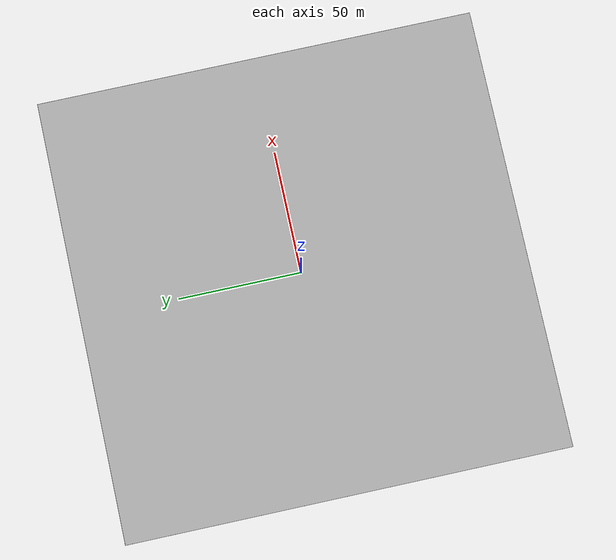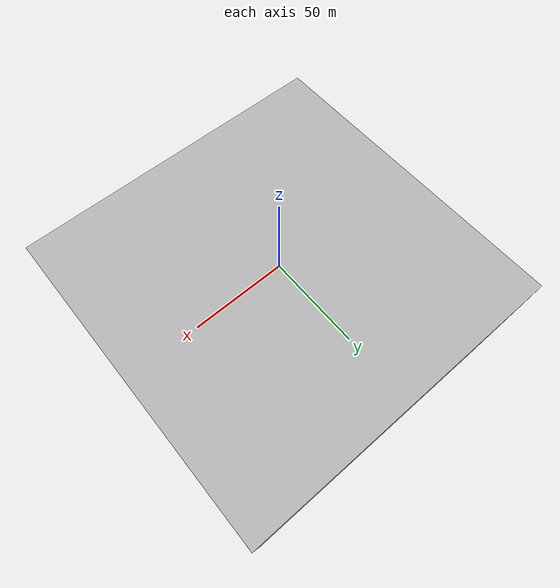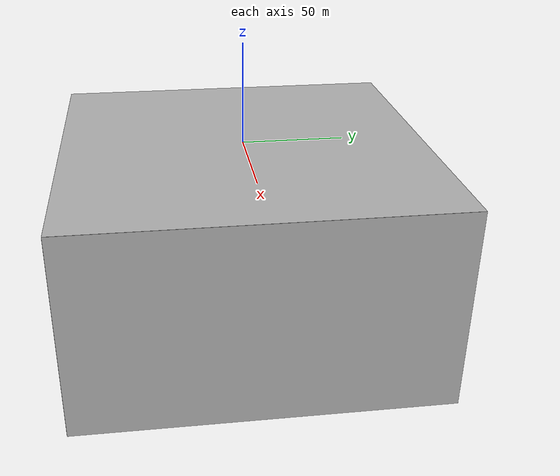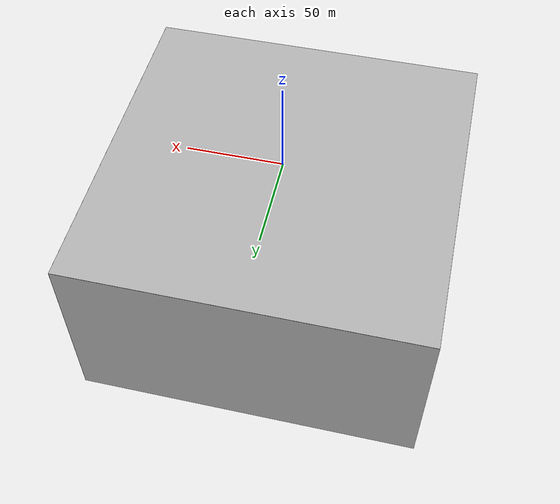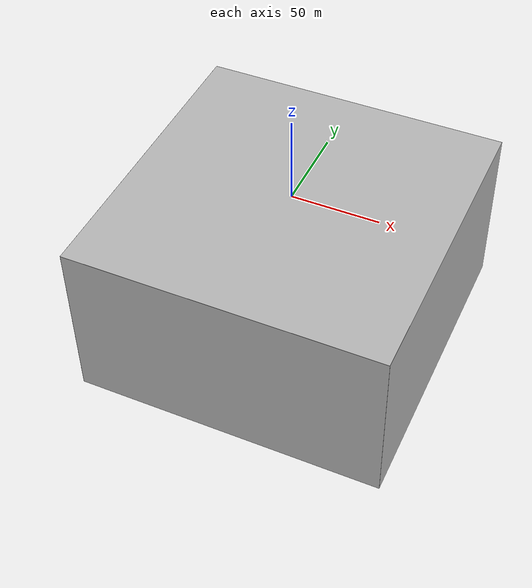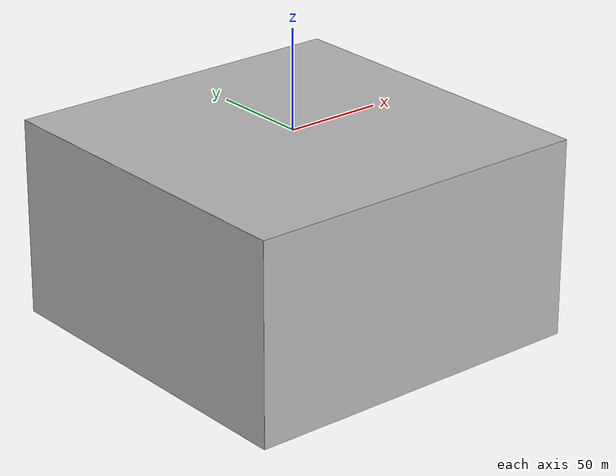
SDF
<sdf version="1.5">
 <world name="auv_cage">
  <physics name="default_physics" default="true" type="ode">
   <max_step_size>0.01</max_step_size>
   <real_time_factor>1</real_time_factor>
   <real_time_update_rate>100</real_time_update_rate>
   <ode><solver><type>quick</type><iters>50</iters><sor>1.2</sor></solver></ode>
  </physics>
  <scene>
   <ambient>0 0 0 0</ambient>
   <sky><clouds><speed>12</speed></clouds></sky>
   <shadows>1</shadows>
   <fog><color>17 31 39 1.0</color><type>linear</type><density>0.1</density><start>15</start><end>21</end></fog>
  </scene>
  <spherical_coordinates>
   <latitude_deg>56.71897669633431</latitude_deg>
   <longitude_deg>3.515625</longitude_deg>
  </spherical_coordinates>
  <include><uri>model://auv_rl_ocean</uri></include>
  <include><uri>model://april_tag_00</uri><pose>6.958281 22.001699 -97.160591 0 1.57 0</pose></include>
  <include><uri>model://april_tag_01</uri><pose>6.958281 22.502184 -97.160675 0 1.57 0</pose></include>
  <include><uri>model://april_tag_02</uri><pose>6.958281 22.854807 -97.333160 0 1.57 0</pose></include>
  <include><uri>model://april_tag_03</uri><pose>6.958281 22.871216 -98.379211 0 1.57 0</pose></include>
  <include><uri>model://april_tag_04</uri><pose>6.958281 22.493441 -98.606949 0 1.57 0</pose></include>
  <include><uri>model://april_tag_05</uri><pose>6.958281 22.003485 -98.601974 0 1.57 0</pose></include>
  <include><uri>model://april_tag_06</uri><pose>6.958281 21.501818 -98.606949 0 1.57 0</pose></include>
  <include><uri>model://april_tag_07</uri><pose>6.958281 21.141088 -98.372108 0 1.57 0</pose></include>
  <plugin name="underwater_current_plugin" filename="libuuv_underwater_current_ros_plugin.so">
   <namespace>hydrodynamics</namespace>
   <constant_current>
    <topic>current_velocity</topic>
    <velocity><mean>0</mean><min>0</min><max>5</max><mu>0.0</mu><noiseAmp>0.0</noiseAmp></velocity>
    <horizontal_angle>
     <mean>0</mean>
     <min>-3.141592653589793238</min>
     <max>3.141592653589793238</max>
     <mu>0.0</mu>
     <noiseAmp>0.0</noiseAmp>
    </horizontal_angle>
    <vertical_angle>
     <mean>0</mean>
     <min>-3.141592653589793238</min>
     <max>3.141592653589793238</max>
     <mu>0.0</mu>
     <noiseAmp>0.0</noiseAmp>
    </vertical_angle>
   </constant_current>
  </plugin>
  <plugin name="sc_interface" filename="libuuv_sc_ros_interface_plugin.so"/>
 </world>
</sdf>

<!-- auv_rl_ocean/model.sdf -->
<!-- Ocean dimensions = 180 x 180 x 100 (depth rating = 100m) -->
<sdf version="1.5">
  <model name="auv_rl_ocean">
    <static>true</static>
    <link name="auv_rl_ocean">
        <visual name="surface">
            <pose>0 0 0 0 0 0</pose>
            <cast_shadows>false</cast_shadows>
            <geometry>
                <box>
                    <size>180 180 0.1</size>
                </box>
            </geometry>
            <material>
                <script>
                    <uri>file://auv_rl_ocean/materials/scripts/water.material</uri>
                    <name>auv_rl/StaticDeepWater</name>
                </script>
            </material>
        </visual>

        <visual name="bottom">
        <pose>0 0 -100.0 0 0 0</pose>
        <geometry>
          <box>
            <size>180 180 0.1</size>
          </box>
        </geometry>
        <material>
          <script>
            <uri>file://auv_rl_ocean/materials/scripts/water.material</uri>
            <name>auv_rl/SeaWall</name>
          </script>
        </material>
      </visual>

      <visual name="north_wall">
        <pose>0 90 -50.0 0 0 0</pose>
        <geometry>
          <box>
            <size>180 0.1 100</size>
          </box>
        </geometry>
        <material>
          <script>
            <uri>file://auv_rl_ocean/materials/scripts/water.material</uri>
            <name>auv_rl/SeaWall</name>
          </script>
        </material>
      </visual>

      <visual name="south_wall">
        <pose>0 -90 -50.0 0 0 0</pose>
        <geometry>
          <box>
            <size>180 0.1 100</size>
          </box>
        </geometry>
        <material>
          <script>
            <uri>file://auv_rl_ocean/materials/scripts/water.material</uri>
            <name>auv_rl/SeaWall</name>
          </script>
        </material>
      </visual>

      <visual name="east_wall">
        <pose>90 0 -50.0 0 0 0</pose>
        <geometry>
          <box>
            <size>0.1 180 100</size>
          </box>
        </geometry>
        <material>
          <script>
            <uri>file://auv_rl_ocean/materials/scripts/water.material</uri>
            <name>auv_rl/SeaWall</name>
          </script>
        </material>
      </visual>

      <visual name="west_wall">
        <pose>-90 0 -50.0 0 0 0</pose>
        <geometry>
          <box>
            <size>0.1 180 100</size>
          </box>
        </geometry>
        <material>
          <script>
            <uri>file://auv_rl_ocean/materials/scripts/water.material</uri>
            <name>auv_rl/SeaWall</name>
          </script>
        </material>
      </visual>
    </link>
  </model>
</sdf>

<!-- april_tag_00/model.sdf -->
<sdf version="1.5">
  <model name="april_tag_00">
    <static>true</static>
    <link name="april_tag_00">
      <pose>0 0 0 0 0 0</pose>
      <inertial>
        <mass>0.0001</mass>
        <inertia>
          <ixx>0.00001</ixx>
          <iyy>0.00001</iyy>
          <izz>0.00001</izz>
          <ixy>0</ixy>
          <ixz>0</ixz>
          <iyz>0</iyz>
        </inertia>
      </inertial>

      <collision name="april_tag_00">
        <pose>0 0 0 0 0 0</pose>
        <geometry>
            <box>
              <size>0.20 0.20 0.001</size>
            </box>
        </geometry>
      </collision>

      <visual name="april_tag_00">
        <pose>0 0 0 0 0 0</pose>
        <geometry>
            <box>
              <size>0.20 0.20 0.001</size>
            </box>
        </geometry>
        <material>
          <script>
            <uri>file://models/auv_rl_fiducials/materials/scripts/fiducials.material</uri>
            <name>AprilTag/id_00</name>
          </script>
        </material>
      </visual>
    </link>
  </model>
</sdf>

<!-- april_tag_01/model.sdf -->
<sdf version="1.5">
  <model name="april_tag_01">
    <static>true</static>
    <link name="april_tag_01">
      <pose>0 0 0 0 0 0</pose>
      <inertial>
        <mass>0.0001</mass>
        <inertia>
          <ixx>0.00001</ixx>
          <iyy>0.00001</iyy>
          <izz>0.00001</izz>
          <ixy>0</ixy>
          <ixz>0</ixz>
          <iyz>0</iyz>
        </inertia>
      </inertial>

      <collision name="april_tag_01">
        <pose>0 0 0 0 0 0</pose>
        <geometry>
            <box>
              <size>0.20 0.20 0.001</size>
            </box>
        </geometry>
      </collision>

      <visual name="april_tag_01">
        <pose>0 0 0 0 0 0</pose>
        <geometry>
            <box>
              <size>0.20 0.20 0.001</size>
            </box>
        </geometry>
        <material>
          <script>
            <uri>file://models/auv_rl_fiducials/materials/scripts/fiducials.material</uri>
            <name>AprilTag/id_01</name>
          </script>
        </material>
      </visual>
    </link>
  </model>
</sdf>

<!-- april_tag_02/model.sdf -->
<sdf version="1.5">
  <model name="april_tag_02">
    <static>true</static>
    <link name="april_tag_02">
      <pose>0 0 0 0 0 0</pose>
      <inertial>
        <mass>0.0001</mass>
        <inertia>
          <ixx>0.00001</ixx>
          <iyy>0.00001</iyy>
          <izz>0.00001</izz>
          <ixy>0</ixy>
          <ixz>0</ixz>
          <iyz>0</iyz>
        </inertia>
      </inertial>

      <collision name="april_tag_02">
        <pose>0 0 0 0 0 0</pose>
        <geometry>
            <box>
              <size>0.14 0.14 0.001</size>
            </box>
        </geometry>
      </collision>

      <visual name="april_tag_02">
        <pose>0 0 0 0 0 0</pose>
        <geometry>
            <box>
              <size>0.14 0.14 0.001</size>
            </box>
        </geometry>
        <material>
          <script>
            <uri>file://models/auv_rl_fiducials/materials/scripts/fiducials.material</uri>
            <name>AprilTag/id_02</name>
          </script>
        </material>
      </visual>
    </link>
  </model>
</sdf>

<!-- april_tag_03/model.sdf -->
<sdf version="1.5">
  <model name="april_tag_03">
    <static>true</static>
    <link name="april_tag_03">
      <pose>0 0 0 0 0 0</pose>
      <inertial>
        <mass>0.0001</mass>
        <inertia>
          <ixx>0.00001</ixx>
          <iyy>0.00001</iyy>
          <izz>0.00001</izz>
          <ixy>0</ixy>
          <ixz>0</ixz>
          <iyz>0</iyz>
        </inertia>
      </inertial>

      <collision name="april_tag_03">
        <pose>0 0 0 0 0 0</pose>
        <geometry>
            <box>
              <size>0.25 0.25 0.001</size>
            </box>
        </geometry>
      </collision>

      <visual name="april_tag_03">
        <pose>0 0 0 0 0 0</pose>
        <geometry>
            <box>
              <size>0.25 0.25 0.001</size>
            </box>
        </geometry>
        <material>
          <script>
            <uri>file://models/auv_rl_fiducials/materials/scripts/fiducials.material</uri>
            <name>AprilTag/id_03</name>
          </script>
        </material>
      </visual>
    </link>
  </model>
</sdf>

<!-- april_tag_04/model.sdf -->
<sdf version="1.5">
  <model name="april_tag_04">
    <static>true</static>
    <link name="april_tag_04">
      <pose>0 0 0 0 0 0</pose>
      <inertial>
        <mass>0.0001</mass>
        <inertia>
          <ixx>0.00001</ixx>
          <iyy>0.00001</iyy>
          <izz>0.00001</izz>
          <ixy>0</ixy>
          <ixz>0</ixz>
          <iyz>0</iyz>
        </inertia>
      </inertial>

      <collision name="april_tag_04">
        <pose>0 0 0 0 0 0</pose>
        <geometry>
            <box>
              <size>0.25 0.25 0.001</size>
            </box>
        </geometry>
      </collision>

      <visual name="april_tag_04">
        <pose>0 0 0 0 0 0</pose>
        <geometry>
            <box>
              <size>0.25 0.25 0.001</size>
            </box>
        </geometry>
        <material>
          <script>
            <uri>file://models/auv_rl_fiducials/materials/scripts/fiducials.material</uri>
            <name>AprilTag/id_04</name>
          </script>
        </material>
      </visual>
    </link>
  </model>
</sdf>

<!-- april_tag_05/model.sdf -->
<sdf version="1.5">
  <model name="april_tag_05">
    <static>true</static>
    <link name="april_tag_05">
      <pose>0 0 0 0 0 0</pose>
      <inertial>
        <mass>0.0001</mass>
        <inertia>
          <ixx>0.00001</ixx>
          <iyy>0.00001</iyy>
          <izz>0.00001</izz>
          <ixy>0</ixy>
          <ixz>0</ixz>
          <iyz>0</iyz>
        </inertia>
      </inertial>

      <collision name="april_tag_05">
        <pose>0 0 0 0 0 0</pose>
        <geometry>
            <box>
              <size>0.25 0.25 0.001</size>
            </box>
        </geometry>
      </collision>

      <visual name="april_tag_05">
        <pose>0 0 0 0 0 0</pose>
        <geometry>
            <box>
              <size>0.25 0.25 0.001</size>
            </box>
        </geometry>
        <material>
          <script>
            <uri>file://models/auv_rl_fiducials/materials/scripts/fiducials.material</uri>
            <name>AprilTag/id_05</name>
          </script>
        </material>
      </visual>
    </link>
  </model>
</sdf>

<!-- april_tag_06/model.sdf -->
<sdf version="1.5">
  <model name="april_tag_06">
    <static>true</static>
    <link name="april_tag_06">
      <pose>0 0 0 0 0 0</pose>
      <inertial>
        <mass>0.0001</mass>
        <inertia>
          <ixx>0.00001</ixx>
          <iyy>0.00001</iyy>
          <izz>0.00001</izz>
          <ixy>0</ixy>
          <ixz>0</ixz>
          <iyz>0</iyz>
        </inertia>
      </inertial>

      <collision name="april_tag_06">
        <pose>0 0 0 0 0 0</pose>
        <geometry>
            <box>
              <size>0.25 0.25 0.001</size>
            </box>
        </geometry>
      </collision>

      <visual name="april_tag_06">
        <pose>0 0 0 0 0 0</pose>
        <geometry>
            <box>
              <size>0.25 0.25 0.001</size>
            </box>
        </geometry>
        <material>
          <script>
            <uri>file://models/auv_rl_fiducials/materials/scripts/fiducials.material</uri>
            <name>AprilTag/id_06</name>
          </script>
        </material>
      </visual>
    </link>
  </model>
</sdf>

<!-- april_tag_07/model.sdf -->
<sdf version="1.5">
  <model name="april_tag_07">
    <static>true</static>
    <link name="april_tag_07">
      <pose>0 0 0 0 0 0</pose>
      <inertial>
        <mass>0.0001</mass>
        <inertia>
          <ixx>0.00001</ixx>
          <iyy>0.00001</iyy>
          <izz>0.00001</izz>
          <ixy>0</ixy>
          <ixz>0</ixz>
          <iyz>0</iyz>
        </inertia>
      </inertial>

      <collision name="april_tag_07">
        <pose>0 0 0 0 0 0</pose>
        <geometry>
            <box>
              <size>0.25 0.25 0.001</size>
            </box>
        </geometry>
      </collision>

      <visual name="april_tag_07">
        <pose>0 0 0 0 0 0</pose>
        <geometry>
            <box>
              <size>0.25 0.25 0.001</size>
            </box>
        </geometry>
        <material>
          <script>
            <uri>file://models/auv_rl_fiducials/materials/scripts/fiducials.material</uri>
            <name>AprilTag/id_07</name>
          </script>
        </material>
      </visual>
    </link>
  </model>
</sdf>
